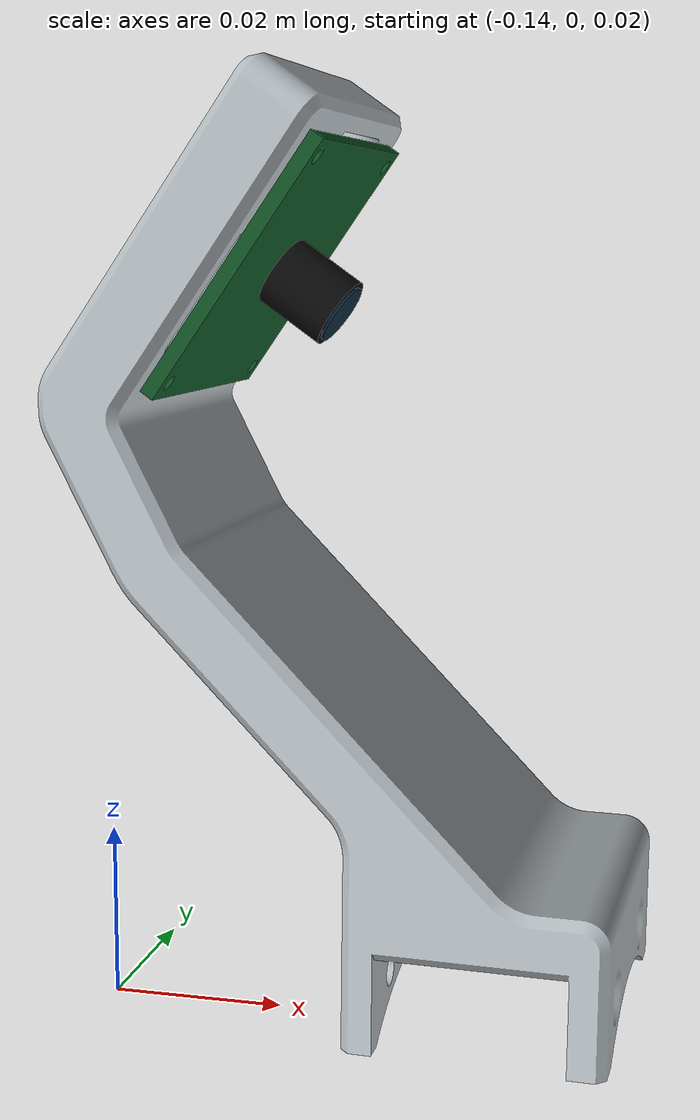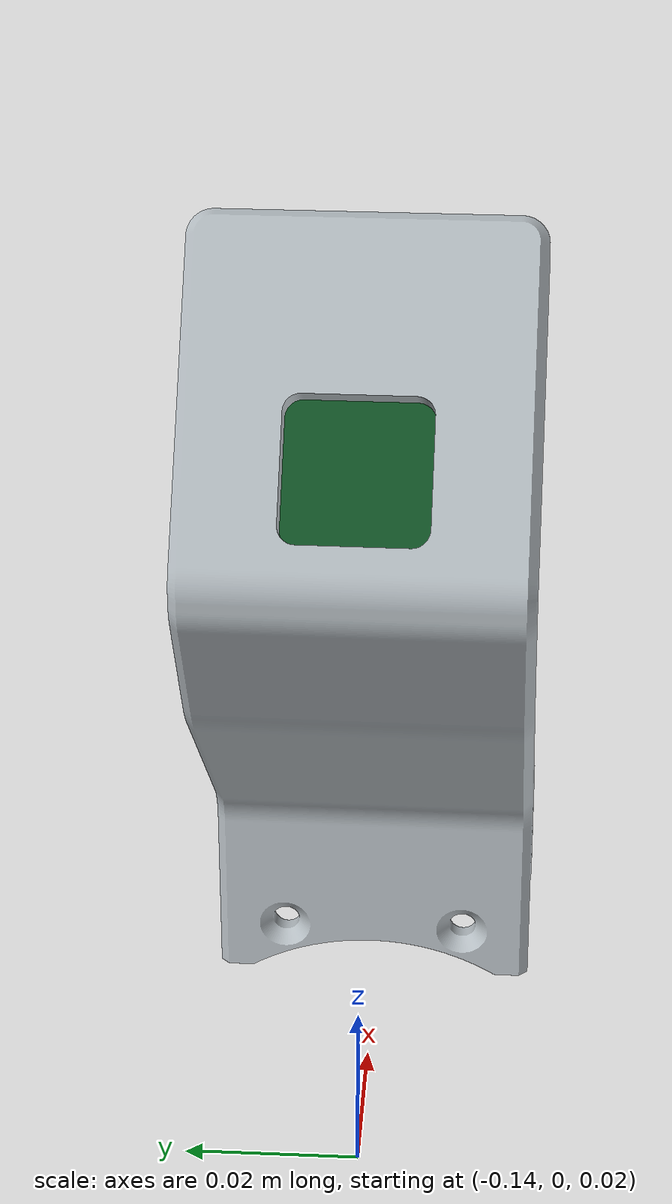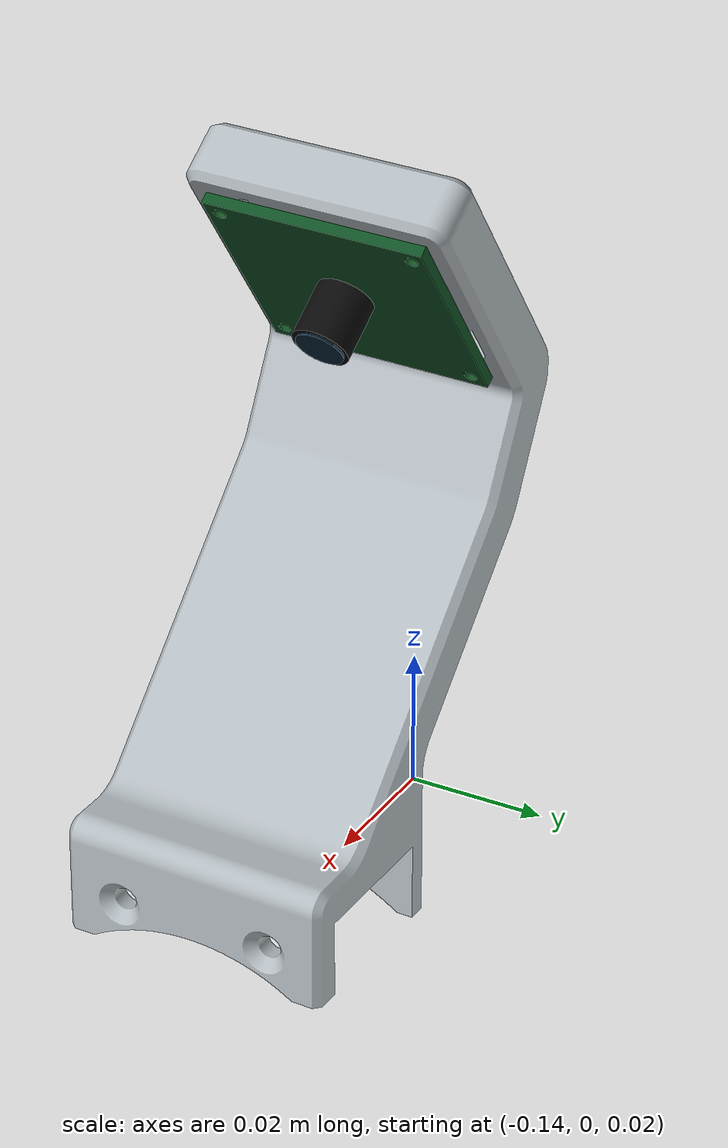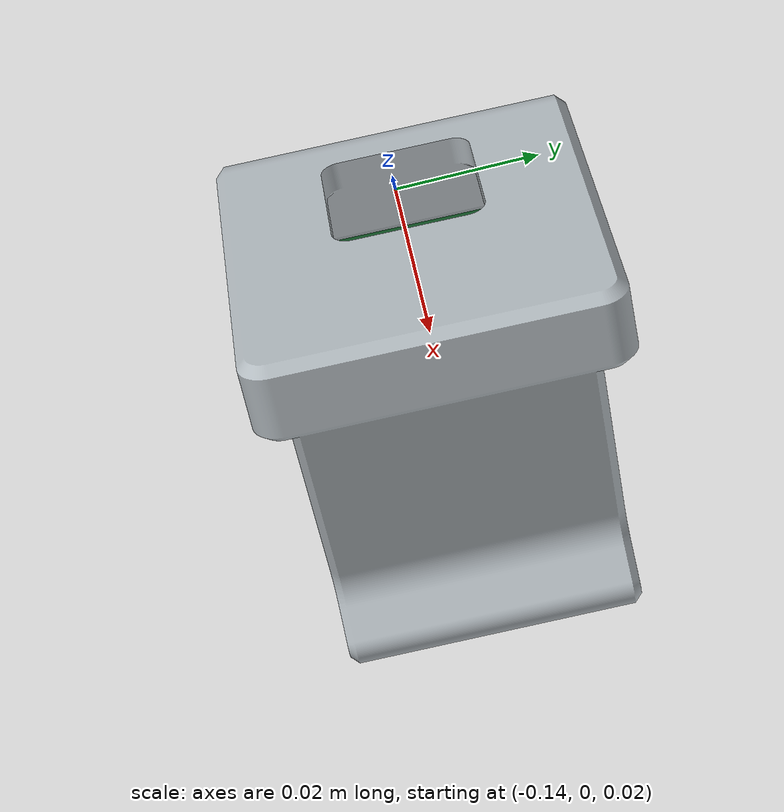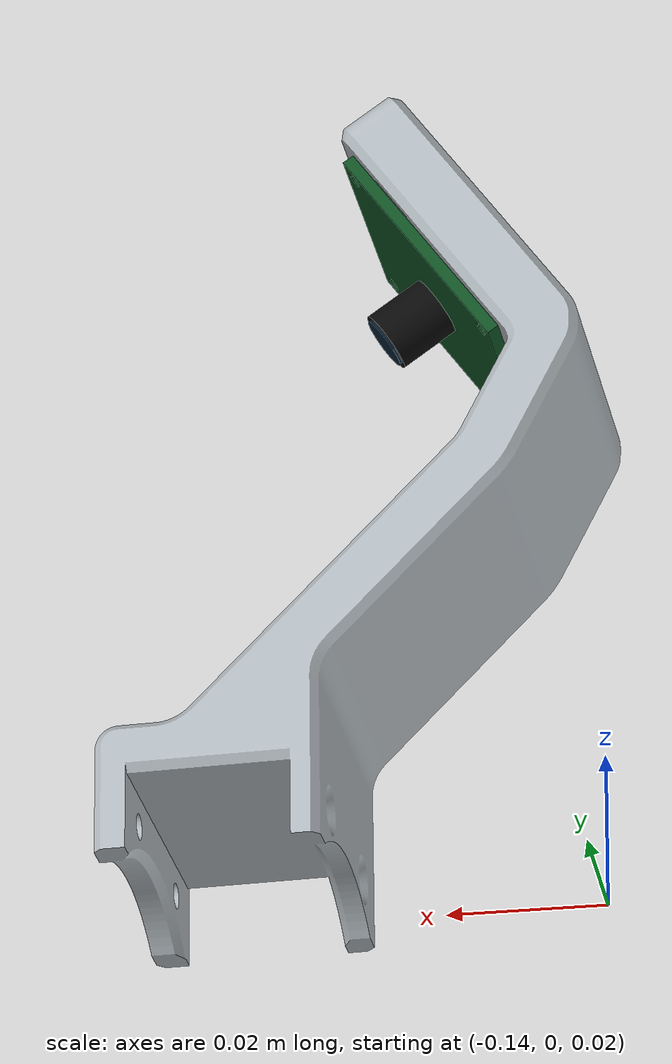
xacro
<?xml version="1.0"?>
<robot xmlns:xacro="http://www.ros.org/wiki/xacro" name="rebotarm_rs_uvc32">
  <!--Official STEP bracket; generic board/lens are schematic, not calibrated.-->
  <link name="gripper_end" />
  <link name="camera_mount_link">
    <visual>
      <geometry>
        <mesh filename="package://uvc32_description/meshes/mounts/UVC32_mount.stl" scale="0.001 0.001 0.001" />
      </geometry>
      <material name="camera_mount_link_uvc32_1">
        <color rgba="0.7 0.73 0.75 1" />
      </material>
    </visual>
  </link>
  <joint name="gripper_to_mount" type="fixed">
    <parent link="gripper_end" />
    <child link="camera_mount_link" />
    <origin xyz="-0.0940591902018 -0.000253569288831 0.0299718222073" rpy="1.5827 0.0024 1.5515" />
  </joint>
  <link name="camera_link">
    <visual>
      <geometry>
        <mesh filename="package://uvc32_description/meshes/uvc32/board.stl" scale="0.001 0.001 0.001" />
      </geometry>
      <material name="camera_link_uvc32_1">
        <color rgba="0.06 0.32 0.14 1" />
      </material>
    </visual>
    <visual>
      <geometry>
        <mesh filename="package://uvc32_description/meshes/uvc32/lens.stl" scale="0.001 0.001 0.001" />
      </geometry>
      <material name="camera_link_uvc32_2">
        <color rgba="0.035 0.035 0.04 1" />
      </material>
    </visual>
    <visual>
      <geometry>
        <mesh filename="package://uvc32_description/meshes/uvc32/glass.stl" scale="0.001 0.001 0.001" />
      </geometry>
      <material name="camera_link_uvc32_3">
        <color rgba="0.04 0.14 0.22 1" />
      </material>
    </visual>
  </link>
  <joint name="mount_to_camera" type="fixed">
    <parent link="camera_mount_link" />
    <child link="camera_link" />
    <origin xyz="1.4555e-06 0.07507025725 -0.0274030491" rpy="-0.60145585568 0 3.14159265359" />
  </joint>
  <link name="camera_color_frame" />
  <joint name="camera_color_joint" type="fixed">
    <parent link="camera_link" />
    <child link="camera_color_frame" />
    <origin xyz="0 0 0.0099" rpy="0 0 0" />
  </joint>
  <link name="camera_color_optical_frame" />
  <joint name="camera_color_optical_joint" type="fixed">
    <parent link="camera_color_frame" />
    <child link="camera_color_optical_frame" />
    <origin xyz="0 0 0" rpy="0 0 0" />
  </joint>
</robot>
